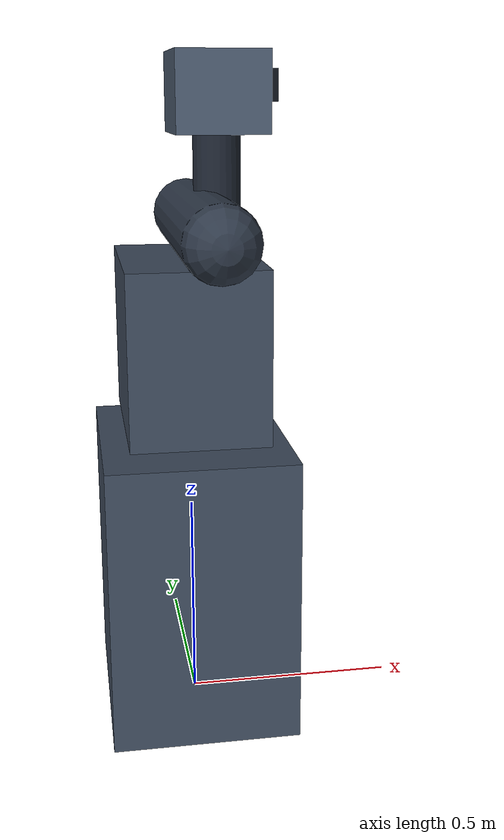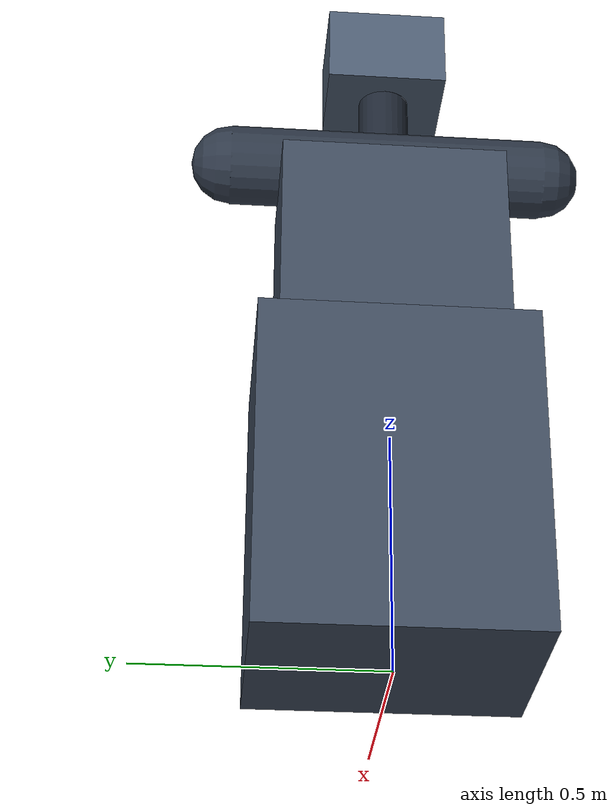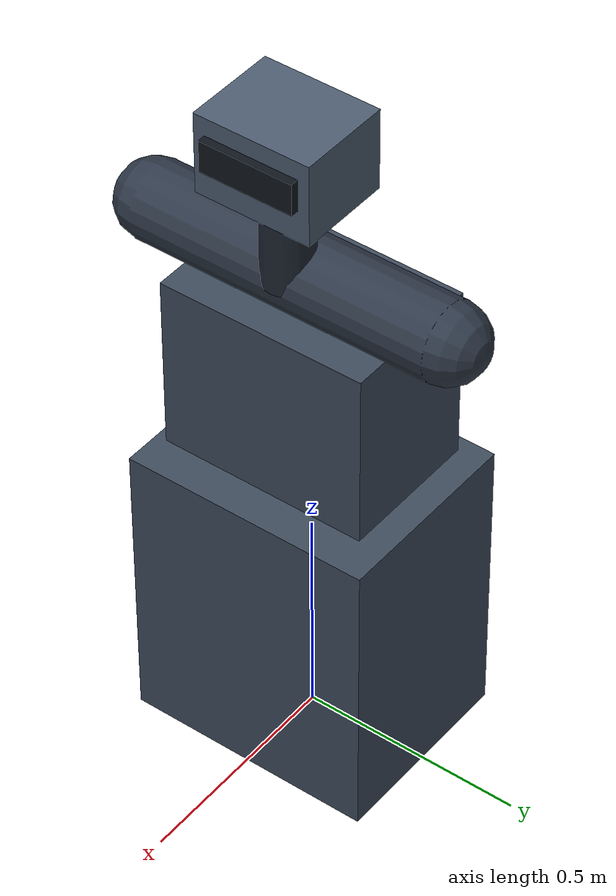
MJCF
<mujoco model="anygine modular dual panda frame">
  <compiler angle="radian" autolimits="true"/>
  <option timestep="0.002" integrator="implicitfast"/>

  <default>
    <default class="frame_visual">
      <geom group="2" contype="0" conaffinity="0" rgba="0.24 0.29 0.36 1"/>
    </default>
    <default class="mount_site">
      <site type="sphere" size="0.012" rgba="0.15 0.65 1 0.35" group="4"/>
    </default>
  </default>

  <worldbody>
    <body name="dual_panda_base" pos="0 0 0.34">
      <geom name="dual_panda_base_visual" class="frame_visual" type="box" size="0.22 0.28 0.34"/>
      <geom name="dual_panda_base_column_visual" class="frame_visual" type="cylinder"
        pos="0 0 0.40" size="0.13 0.10" rgba="0.14 0.17 0.22 1"/>

      <body name="dual_panda_torso" pos="0 0 0.57">
        <geom name="dual_panda_torso_visual" class="frame_visual" type="box"
          size="0.16 0.235 0.20"/>

        <body name="dual_panda_shoulder_carrier" pos="0.035 0 0.27">
          <geom name="dual_panda_shoulder_beam_visual" class="frame_visual" type="capsule"
            fromto="0 -0.34 0 0 0.34 0" size="0.085" rgba="0.18 0.22 0.28 1"/>
          <!-- Rotate each table-mounted Panda +90 degrees about Y so its original +Z axis points
               forward. The home pose then hangs naturally below a human-height shoulder line. -->
          <site name="left_shoulder_mount" class="mount_site" pos="0 0.34 0"
            quat="0.7071067811865476 0 0.7071067811865476 0"/>
          <site name="right_shoulder_mount" class="mount_site" pos="0 -0.34 0"
            quat="0.7071067811865476 0 0.7071067811865476 0"/>

          <body name="dual_panda_head" pos="0.035 0 0.30">
            <geom name="dual_panda_neck_visual" class="frame_visual" type="cylinder"
              pos="0 0 -0.15" size="0.055 0.15" rgba="0.12 0.15 0.20 1"/>
            <geom name="dual_panda_head_visual" class="frame_visual" type="box"
              size="0.105 0.13 0.09" rgba="0.30 0.36 0.44 1"/>
            <geom name="dual_panda_sensor_bar_visual" class="frame_visual" type="box"
              pos="0.105 0 0.015" size="0.018 0.105 0.035" rgba="0.06 0.08 0.11 1"/>
            <site name="head_imu_mount" class="mount_site" pos="0.02 0 0"/>
            <camera name="head_rgb" pos="0.11 0 0.015" xyaxes="0 -1 0 0 0 1" fovy="58"/>
          </body>
        </body>
      </body>
    </body>
  </worldbody>

  <sensor>
    <accelerometer name="head_accelerometer" site="head_imu_mount"/>
    <gyro name="head_gyro" site="head_imu_mount"/>
  </sensor>
</mujoco>
